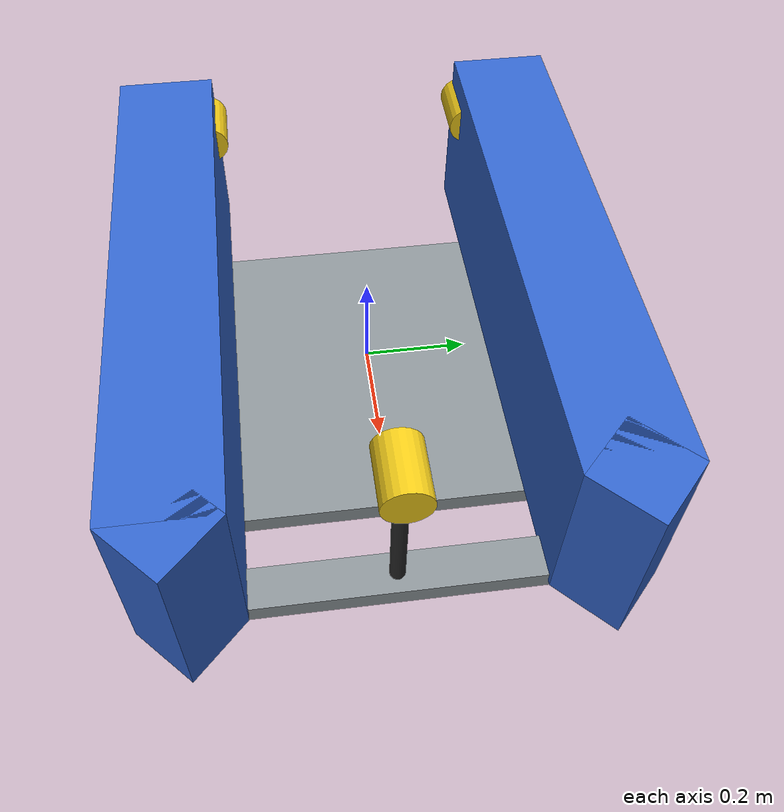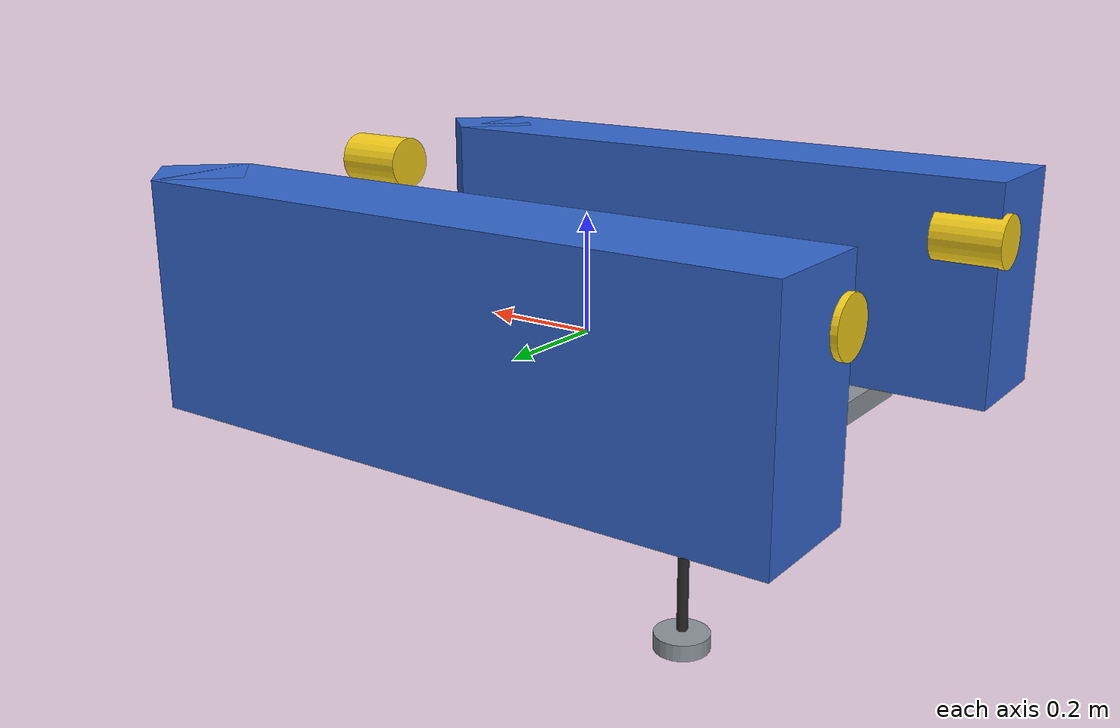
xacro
<?xml version="1.0"?>
<robot xmlns:xacro="http://www.ros.org/wiki/xacro" name="helga">

    <xacro:property name="hull_length" value="1.2" />
    <xacro:property name="hull_width" value="0.2" />
    <xacro:property name="hull_height" value="0.376" />  <!-- hull CAD -->
    <xacro:property name="hull_offset" value="0.374" />   <!-- hull centerline distance from boat centerline -->
    <xacro:property name="draft" value="0.274" />       <!-- hull depth below waterline at 30.2 kg (hull CAD) -->
    <xacro:property name="azimuth_depth" value="0.248" />  <!-- azimuth below waterline (Helga team) -->
    <xacro:property name="stern_thruster_depth" value="0.177" />  <!-- drawing BR-101447, must match vessel.yaml -->
    <xacro:property name="stern_thruster_y" value="0.296" />      <!-- drawing BR-101447, must match vessel.yaml -->

    <material name="hull_blue"><color rgba="0.20 0.40 0.80 1.0" /></material>
    <material name="deck_grey"><color rgba="0.55 0.58 0.60 1.0" /></material>
    <material name="thruster_yellow"><color rgba="0.95 0.80 0.10 1.0" /></material>
    <material name="dark"><color rgba="0.15 0.15 0.15 1.0" /></material>

    <!-- Hull macro: one pontoon with a pointed bow -->
    <xacro:macro name="hull" params="side y">
        <visual name="hull_${side}">
            <origin xyz="-0.05 ${y} ${hull_height/2 - draft}" rpy="0 0 0" />
            <geometry><box size="${hull_length - 0.1} ${hull_width} ${hull_height}" /></geometry>
            <material name="hull_blue" />
        </visual>
        <visual name="hull_${side}_bow">
            <origin xyz="${hull_length/2 - 0.1} ${y} ${hull_height/2 - draft}" rpy="0 0 0.785398" />
            <geometry><box size="${hull_width*0.7071} ${hull_width*0.7071} ${hull_height}" /></geometry>
            <material name="hull_blue" />
        </visual>
    </xacro:macro>

    <link name="base_link">
        <xacro:hull side="port" y="${hull_offset}" />
        <xacro:hull side="starboard" y="${-hull_offset}" />

        <!-- Deck / electronics box between the hulls -->
        <visual name="deck">
            <origin xyz="-0.05 0 ${hull_height - draft + 0.02}" rpy="0 0 0" />
            <geometry><box size="0.7 ${2*hull_offset} 0.04" /></geometry>
            <material name="deck_grey" />
        </visual>
        <visual name="electronics_box">
            <origin xyz="-0.05 0 ${hull_height - draft + 0.10}" rpy="0 0 0" />
            <geometry><box size="0.4 0.3 0.12" /></geometry>
            <material name="dark" />
        </visual>

        <!-- Front crossbeam carrying the bow azimuth -->
        <visual name="front_beam">
            <origin xyz="0.45 0 ${hull_height - draft}" rpy="0 0 0" />
            <geometry><box size="0.08 ${2*hull_offset} 0.04" /></geometry>
            <material name="deck_grey" />
        </visual>

        <!-- Bow azimuth: vertical shaft + thruster pod -->
        <visual name="azimuth_shaft">
            <origin xyz="0.45 0 ${(hull_height - draft - azimuth_depth) / 2}" rpy="0 0 0" />
            <geometry><cylinder radius="0.015" length="${hull_height - draft + azimuth_depth}" /></geometry>
            <material name="dark" />
        </visual>
        <visual name="azimuth_pod">
            <origin xyz="0.45 0 ${-azimuth_depth}" rpy="0 1.5708 0" />
            <geometry><cylinder radius="0.045" length="0.12" /></geometry>
            <material name="thruster_yellow" />
        </visual>

        <!-- Stern thrusters, one under each hull -->
        <visual name="stern_port_thruster">
            <origin xyz="-0.55 ${stern_thruster_y} ${-stern_thruster_depth}" rpy="0 1.5708 0" />
            <geometry><cylinder radius="0.045" length="0.12" /></geometry>
            <material name="thruster_yellow" />
        </visual>
        <visual name="stern_starboard_thruster">
            <origin xyz="-0.55 ${-stern_thruster_y} ${-stern_thruster_depth}" rpy="0 1.5708 0" />
            <geometry><cylinder radius="0.045" length="0.12" /></geometry>
            <material name="thruster_yellow" />
        </visual>

        <!-- GNSS antenna mast -->
        <visual name="gnss_mast">
            <origin xyz="-0.2 0 ${hull_height - draft + 0.25}" rpy="0 0 0" />
            <geometry><cylinder radius="0.01" length="0.3" /></geometry>
            <material name="dark" />
        </visual>
        <visual name="gnss_antenna">
            <origin xyz="-0.2 0 ${hull_height - draft + 0.42}" rpy="0 0 0" />
            <geometry><cylinder radius="0.05" length="0.03" /></geometry>
            <material name="deck_grey" />
        </visual>
    </link>

    <link name="base_link_ned"/>
    <joint name="base_link_to_ned" type="fixed">
        <child link="base_link"/>
        <parent link="base_link_ned"/>
        <origin xyz="0 0 0" rpy="-3.1415926 0 0.0"/>
    </joint>

    <!-- Sensor frames (NED) -->
    <link name="imu_link"/>
    <joint name="imu_joint" type="fixed">
        <parent link="base_link_ned"/>
        <child link="imu_link"/>
        <origin xyz="-0.05 0 ${-(hull_height - draft + 0.10)}" rpy="0 0 0"/>
    </joint>

    <link name="gnss_link"/>
    <joint name="gnss_joint" type="fixed">
        <parent link="base_link_ned"/>
        <child link="gnss_link"/>
        <origin xyz="-0.2 0 ${-(hull_height - draft + 0.43)}" rpy="0 0 0"/>
    </joint>

    <!-- Thruster frames (NED). Positions must match vessel.yaml. -->
    <xacro:macro name="thruster" params="thruster_name origin_xyz origin_rpy">
        <link name="${thruster_name}_link" />
        <joint name="${thruster_name}_joint" type="fixed">
            <parent link="base_link_ned" />
            <child link="${thruster_name}_link" />
            <origin xyz="${origin_xyz}" rpy="${origin_rpy}" />
        </joint>
    </xacro:macro>

    <xacro:thruster thruster_name="stern_port_thruster"      origin_xyz="-0.55 ${-stern_thruster_y} ${stern_thruster_depth}" origin_rpy="0 0 0" />
    <xacro:thruster thruster_name="stern_starboard_thruster" origin_xyz="-0.55 ${stern_thruster_y} ${stern_thruster_depth}" origin_rpy="0 0 0" />
    <xacro:thruster thruster_name="bow_azimuth_thruster"     origin_xyz="0.45 0 ${azimuth_depth}" origin_rpy="0 0 0" />

</robot>
